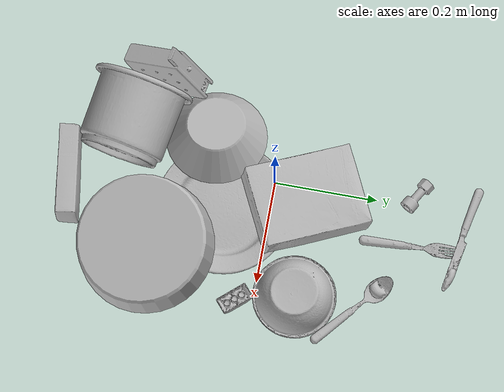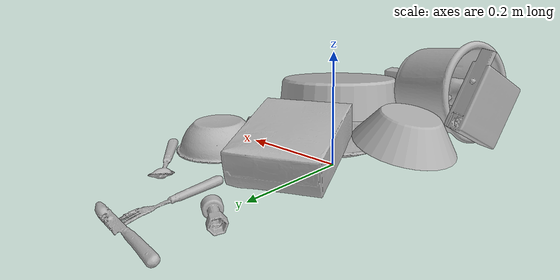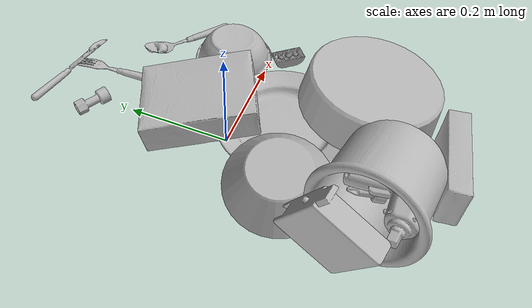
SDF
<sdf version="1.4">
  <world name="default">
    <light name="light1" type="point">
      <pose>0 0 1 0 0 0</pose>
      <diffuse>3 3 3 1</diffuse>
      <specular>3 3 3 1</specular>
    </light>
    <light name="light2" type="point">
      <pose>0 0.5 2 0 0 0</pose>
      <diffuse>1 1 1 1</diffuse>
      <specular>1 1 1 1</specular>
    </light>
    <light name="light3" type="point">
      <pose>0 0.5 2 0 0 0</pose>
      <diffuse>3 3 3 1</diffuse>
      <specular>3 3 3 1</specular>
    </light>
    <scene>
      <ambient>0.7 0.7 0.7</ambient>
    </scene>
    <model name="plate1">
      <link name="link_plate1">
        <collision name="default">
          <geometry>
            <mesh>
              <uri>model://plate/collision_meshes/collision.obj</uri>
              <scale>1.0 1.0 1.0</scale>
            </mesh>
          </geometry>
          <surface>
            <friction>
              <ode>
                <mu>0.5</mu>
                <mu2>0.5</mu2>
              </ode>
            </friction>
          <contact>
        <ode>
            <max_vel>0</max_vel>
            <min_depth>0.0001</min_depth>
            <kp>1e8</kp>
        </ode>
    </contact></surface>
        </collision>
        <visual name="default">
          <geometry>
            <mesh>
              <uri>model://plate/visual_meshes/visual.dae</uri>
              <scale>1.0 1.0 1.0</scale>
            </mesh>
          </geometry>
        </visual>
        <inertial>
          <mass>0.11001742631196976</mass>
          <pose>-0.0006044686888344586 0.000278257648460567 -0.0010561998933553696 0.00221878912528286 -0.0032254756485070152 0.4526088917028743</pose>
          <inertia>
            <ixx>0.00051466376</ixx>
            <iyy>0.0005097412</iyy>
            <izz>0.0010066056</izz>
            <ixy>0</ixy>
            <ixz>0</ixz>
            <iyz>0</iyz>
          </inertia>
        </inertial>
      </link>
      <pose>0.07121524214744568 -0.08745674788951874 0.013817273080348969 -0.00021842980571593821 0.0010865469952773123 1.6749048011204182</pose>
    </model>
    <model name="plate2">
      <link name="link_plate2">
        <collision name="default">
          <geometry>
            <mesh>
              <uri>model://pan_tefal/collision_meshes/collision.obj</uri>
              <scale>1.0 1.0 1.0</scale>
            </mesh>
          </geometry>
          <surface>
            <friction>
              <ode>
                <mu>0.5</mu>
                <mu2>0.5</mu2>
              </ode>
            </friction>
          <contact>
        <ode>
            <max_vel>0</max_vel>
            <min_depth>0.0001</min_depth>
            <kp>1e8</kp>
        </ode>
    </contact></surface>
        </collision>
        <visual name="default">
          <geometry>
            <mesh>
              <uri>model://pan_tefal/visual_meshes/visual.dae</uri>
              <scale>1.0 1.0 1.0</scale>
            </mesh>
          </geometry>
        </visual>
        <inertial>
          <mass>1.457576870918274</mass>
          <pose>-0.00018002426077146083 3.279360316810198e-05 -0.008514936082065105 0.0008190306735146073 -0.00033013365411173643 -0.33185917339097665</pose>
          <inertia>
            <ixx>0.010061583</ixx>
            <iyy>0.01012645</iyy>
            <izz>0.01852144</izz>
            <ixy>0</ixy>
            <ixz>0</ixz>
            <iyz>0</iyz>
          </inertia>
        </inertial>
      </link>
      <pose>0.17130538821220398 -0.22368374466896057 0.054193466901779175 -3.068832464181605 -0.10223558018317998 1.6497710891648543</pose>
    </model>
    <model name="bowl1">
      <link name="link_bowl1">
        <collision name="default">
          <geometry>
            <mesh>
              <uri>model://bowl_a/collision_meshes/collision.obj</uri>
              <scale>1.0 1.0 1.0</scale>
            </mesh>
          </geometry>
          <surface>
            <friction>
              <ode>
                <mu>0.5</mu>
                <mu2>0.5</mu2>
              </ode>
            </friction>
          <contact>
        <ode>
            <max_vel>0</max_vel>
            <min_depth>0.0001</min_depth>
            <kp>1e8</kp>
        </ode>
    </contact></surface>
        </collision>
        <visual name="default">
          <geometry>
            <mesh>
              <uri>model://bowl_a/visual_meshes/visual.dae</uri>
              <scale>1.0 1.0 1.0</scale>
            </mesh>
          </geometry>
        </visual>
        <inertial>
          <mass>0.29746556282043457</mass>
          <pose>0.0002786756958812475 4.7311452362919226e-05 -0.0013765294570475817 -0.0009805438325310402 -0.001093816410149737 -0.19123071729823712</pose>
          <inertia>
            <ixx>0.0008468981</ixx>
            <iyy>0.00085209764</iyy>
            <izz>0.0015062407</izz>
            <ixy>0</ixy>
            <ixz>0</ixz>
            <iyz>0</iyz>
          </inertia>
        </inertial>
      </link>
      <pose>-0.0697745531797409 -0.1265534609556198 0.04829755797982216 3.001853094088784 0.13304832583945947 2.5700976251004044</pose>
    </model>
    <model name="bowl2">
      <link name="link_bowl2">
        <collision name="default">
          <geometry>
            <mesh>
              <uri>model://bowl/collision_meshes/collision.obj</uri>
              <scale>1.0 1.0 1.0</scale>
            </mesh>
          </geometry>
          <surface>
            <friction>
              <ode>
                <mu>0.5</mu>
                <mu2>0.5</mu2>
              </ode>
            </friction>
          <contact>
        <ode>
            <max_vel>0</max_vel>
            <min_depth>0.0001</min_depth>
            <kp>1e8</kp>
        </ode>
    </contact></surface>
        </collision>
        <visual name="default">
          <geometry>
            <mesh>
              <uri>model://bowl/visual_meshes/visual.dae</uri>
              <scale>1.0 1.0 1.0</scale>
            </mesh>
          </geometry>
        </visual>
        <inertial>
          <mass>0.12348172068595886</mass>
          <pose>0.0002044529828708619 -0.0010302055161446333 -0.0008042656118050218 -0.01576411854188812 0.014546757923928972 0.7140383762832406</pose>
          <inertia>
            <ixx>0.0002836472</ixx>
            <iyy>0.00027730947</iyy>
            <izz>0.00047719217</izz>
            <ixy>0</ixy>
            <ixz>0</ixz>
            <iyz>0</iyz>
          </inertia>
        </inertial>
      </link>
      <pose>0.21520869433879852 0.07631785422563553 0.027247346937656403 -3.132723909685784 0.0006756169185562695 1.2417886212231937</pose>
    </model>
    <model name="silverware1">
      <link name="link_silverware1">
        <collision name="default">
          <geometry>
            <mesh>
              <uri>model://spoon/collision_meshes/collision.obj</uri>
              <scale>1.0 1.0 1.0</scale>
            </mesh>
          </geometry>
          <surface>
            <friction>
              <ode>
                <mu>0.5</mu>
                <mu2>0.5</mu2>
              </ode>
            </friction>
          <contact>
        <ode>
            <max_vel>0</max_vel>
            <min_depth>0.0001</min_depth>
            <kp>1e8</kp>
        </ode>
    </contact></surface>
        </collision>
        <visual name="default">
          <geometry>
            <mesh>
              <uri>model://spoon/visual_meshes/visual.dae</uri>
              <scale>1.0 1.0 1.0</scale>
            </mesh>
          </geometry>
        </visual>
        <inertial>
          <mass>0.03284037858247757</mass>
          <pose>-0.005526319611817598 -0.001603417214937508 -0.000727165665011853 0.03521671059584429 -0.039065856285187314 0.0061506144474233635</pose>
          <inertia>
            <ixx>1.8266356e-06</ixx>
            <iyy>0.00012495652</iyy>
            <izz>0.00012585736</izz>
            <ixy>0</ixy>
            <ixz>0</ixz>
            <iyz>0</iyz>
          </inertia>
        </inertial>
      </link>
      <pose>0.22189992666244507 0.18765421211719513 0.008385262452065945 0.006729847427297724 0.02689298849879196 2.412304553264664</pose>
    </model>
    <model name="box1">
      <link name="link_box1">
        <collision name="default">
          <geometry>
            <mesh>
              <uri>model://cracker_box/collision_meshes/collision.obj</uri>
              <scale>1.0 1.0 1.0</scale>
            </mesh>
          </geometry>
          <surface>
            <friction>
              <ode>
                <mu>0.5</mu>
                <mu2>0.5</mu2>
              </ode>
            </friction>
          <contact>
        <ode>
            <max_vel>0</max_vel>
            <min_depth>0.0001</min_depth>
            <kp>1e8</kp>
        </ode>
    </contact></surface>
        </collision>
        <visual name="default">
          <geometry>
            <mesh>
              <uri>model://cracker_box/visual_meshes/visual.dae</uri>
              <scale>1.0 1.0 1.0</scale>
            </mesh>
          </geometry>
        </visual>
        <inertial>
          <mass>2.434305191040039</mass>
          <pose>0.0009464126778766513 0.0002543424488976598 -0.0017029534792527556 -0.0003162073658586955 -0.011106488669321329 0.0025467952332158075</pose>
          <inertia>
            <ixx>0.0061917845</ixx>
            <iyy>0.010223853</iyy>
            <izz>0.014590379</izz>
            <ixy>0</ixy>
            <ixz>0</ixz>
            <iyz>0</iyz>
          </inertia>
        </inertial>
      </link>
      <pose>0.03279644250869751 0.0671384185552597 0.0505341999232769 3.133537054804519 0.1532230235851564 2.024572247600637</pose>
    </model>
    <model name="box2">
      <link name="link_box2">
        <collision name="default">
          <geometry>
            <mesh>
              <uri>model://sugar_box/collision_meshes/collision.obj</uri>
              <scale>1.0 1.0 1.0</scale>
            </mesh>
          </geometry>
          <surface>
            <friction>
              <ode>
                <mu>0.5</mu>
                <mu2>0.5</mu2>
              </ode>
            </friction>
          <contact>
        <ode>
            <max_vel>0</max_vel>
            <min_depth>0.0001</min_depth>
            <kp>1e8</kp>
        </ode>
    </contact></surface>
        </collision>
        <visual name="default">
          <geometry>
            <mesh>
              <uri>model://sugar_box/visual_meshes/visual.dae</uri>
              <scale>1.0 1.0 1.0</scale>
            </mesh>
          </geometry>
        </visual>
        <inertial>
          <mass>0.5700510144233704</mass>
          <pose>0.0010343727190047503 3.849109634757042e-05 -0.00036364805418998003 -0.00040462615490547663 0.0010506634056045778 0.0026153790218534064</pose>
          <inertia>
            <ixx>0.00047496508</ixx>
            <iyy>0.0015351841</iyy>
            <izz>0.0018377992</izz>
            <ixy>0</ixy>
            <ixz>0</ixz>
            <iyz>0</iyz>
          </inertia>
        </inertial>
      </link>
      <pose>0.06266934424638748 -0.38975971937179565 0.04647918418049812 -1.5699501229553428 -0.005755557143742643 0.1449174067330872</pose>
    </model>
    <model name="cup1">
      <link name="link_cup1">
        <collision name="default">
          <geometry>
            <mesh>
              <uri>model://i_cups/collision_meshes/collision.obj</uri>
              <scale>2.0 2.0 2.0</scale>
            </mesh>
          </geometry>
          <surface>
            <friction>
              <ode>
                <mu>0.5</mu>
                <mu2>0.5</mu2>
              </ode>
            </friction>
          <contact>
        <ode>
            <max_vel>0</max_vel>
            <min_depth>0.0001</min_depth>
            <kp>1e8</kp>
        </ode>
    </contact></surface>
        </collision>
        <visual name="default">
          <geometry>
            <mesh>
              <uri>model://i_cups/visual_meshes/visual.dae</uri>
              <scale>2.0 2.0 2.0</scale>
            </mesh>
          </geometry>
        </visual>
        <inertial>
          <mass>0.8749163746833801</mass>
          <pose>0.0002248019736725837 0.0003359491820447147 -0.0017158064292743802 -0.028982988446176382 -0.03987323668700188 -0.3459135059395342</pose>
          <inertia>
            <ixx>0.0048453393</ixx>
            <iyy>0.0048880302</iyy>
            <izz>0.0054154512</izz>
            <ixy>0</ixy>
            <ixz>0</ixz>
            <iyz>0</iyz>
          </inertia>
        </inertial>
      </link>
      <pose>-0.05596550181508064 -0.28830060362815857 0.08982506394386292 1.2133119387821023 1.2105360389165676 -2.0853277692779795</pose>
    </model>
    <model name="silverware2">
      <link name="link_silverware2">
        <collision name="default">
          <geometry>
            <mesh>
              <uri>model://fork/collision_meshes/collision.obj</uri>
              <scale>1.0 1.0 1.0</scale>
            </mesh>
          </geometry>
          <surface>
            <friction>
              <ode>
                <mu>0.5</mu>
                <mu2>0.5</mu2>
              </ode>
            </friction>
          <contact>
        <ode>
            <max_vel>0</max_vel>
            <min_depth>0.0001</min_depth>
            <kp>1e8</kp>
        </ode>
    </contact></surface>
        </collision>
        <visual name="default">
          <geometry>
            <mesh>
              <uri>model://fork/visual_meshes/visual.dae</uri>
              <scale>1.0 1.0 1.0</scale>
            </mesh>
          </geometry>
        </visual>
        <inertial>
          <mass>0.021080315113067627</mass>
          <pose>-0.02957003377377987 0.00046588227269239724 0.0003218860656488687 -0.013550583544297463 -0.010977830979267335 0.014453899239778455</pose>
          <inertia>
            <ixx>7.3898417e-07</ixx>
            <iyy>5.503463e-05</iyy>
            <izz>5.5365177e-05</izz>
            <ixy>0</ixy>
            <ixz>0</ixz>
            <iyz>0</iyz>
          </inertia>
        </inertial>
      </link>
      <pose>0.07927599549293518 0.27756160497665405 0.007444927003234625 -3.063480746839392 0.0028203898633148354 1.6136109309269133</pose>
    </model>
    <model name="silverware3">
      <link name="link_silverware3">
        <collision name="default">
          <geometry>
            <mesh>
              <uri>model://knife/collision_meshes/collision.obj</uri>
              <scale>1.0 1.0 1.0</scale>
            </mesh>
          </geometry>
          <surface>
            <friction>
              <ode>
                <mu>0.5</mu>
                <mu2>0.5</mu2>
              </ode>
            </friction>
          <contact>
        <ode>
            <max_vel>0</max_vel>
            <min_depth>0.0001</min_depth>
            <kp>1e8</kp>
        </ode>
    </contact></surface>
        </collision>
        <visual name="default">
          <geometry>
            <mesh>
              <uri>model://knife/visual_meshes/visual.dae</uri>
              <scale>1.0 1.0 1.0</scale>
            </mesh>
          </geometry>
        </visual>
        <inertial>
          <mass>0.03557601198554039</mass>
          <pose>-0.023785259574651718 0.0015275123296305537 5.062016498413868e-05 0.07305791577183936 0.01724842049726123 -0.007409813921982597</pose>
          <inertia>
            <ixx>1.0097915e-06</ixx>
            <iyy>0.00013667726</iyy>
            <izz>0.00013700248</izz>
            <ixy>0</ixy>
            <ixz>0</ixz>
            <iyz>0</iyz>
          </inertia>
        </inertial>
      </link>
      <pose>0.04903857037425041 0.37542715668678284 0.006460187025368214 2.6973649522438454 0.012729169157415522 -0.1716835724588616</pose>
    </model>
    <model name="toy1">
      <link name="link_toy1">
        <collision name="default">
          <geometry>
            <mesh>
              <uri>model://b_toy_airplane/collision_meshes/collision.obj</uri>
              <scale>1.0 1.0 1.0</scale>
            </mesh>
          </geometry>
          <surface>
            <friction>
              <ode>
                <mu>0.5</mu>
                <mu2>0.5</mu2>
              </ode>
            </friction>
          <contact>
        <ode>
            <max_vel>0</max_vel>
            <min_depth>0.0001</min_depth>
            <kp>1e8</kp>
        </ode>
    </contact></surface>
        </collision>
        <visual name="default">
          <geometry>
            <mesh>
              <uri>model://b_toy_airplane/visual_meshes/visual.dae</uri>
              <scale>1.0 1.0 1.0</scale>
            </mesh>
          </geometry>
        </visual>
        <inertial>
          <mass>0.2131570726633072</mass>
          <pose>0.005081363953649998 0.00401558680459857 0.00954306498169899 -0.040018114912876775 -0.04022188568687408 -0.5601502887595425</pose>
          <inertia>
            <ixx>0.00039573</ixx>
            <iyy>0.00015817716</iyy>
            <izz>0.00049232744</izz>
            <ixy>0</ixy>
            <ixz>0</ixz>
            <iyz>0</iyz>
          </inertia>
        </inertial>
      </link>
      <pose>-0.048958662897348404 -0.31419050693511963 0.06213352084159851 0.2755658028036891 -0.07642843024735395 2.9874201081370964</pose>
    </model>
    <model name="toy2">
      <link name="link_toy2">
        <collision name="default">
          <geometry>
            <mesh>
              <uri>model://nine_hole_peg_test/collision_meshes/collision.obj</uri>
              <scale>1.0 1.0 1.0</scale>
            </mesh>
          </geometry>
          <surface>
            <friction>
              <ode>
                <mu>0.5</mu>
                <mu2>0.5</mu2>
              </ode>
            </friction>
          <contact>
        <ode>
            <max_vel>0</max_vel>
            <min_depth>0.0001</min_depth>
            <kp>1e8</kp>
        </ode>
    </contact></surface>
        </collision>
        <visual name="default">
          <geometry>
            <mesh>
              <uri>model://nine_hole_peg_test/visual_meshes/visual.dae</uri>
              <scale>1.0 1.0 1.0</scale>
            </mesh>
          </geometry>
        </visual>
        <inertial>
          <mass>0.9403080940246582</mass>
          <pose>-0.004617387894541025 -0.009647617116570473 2.646069333422929e-05 -0.0014666798116952742 0.0007194174694617774 -0.6342424398534297</pose>
          <inertia>
            <ixx>0.0014703267</ixx>
            <iyy>0.0013728285</iyy>
            <izz>0.0025764457</izz>
            <ixy>0</ixy>
            <ixz>0</ixz>
            <iyz>0</iyz>
          </inertia>
        </inertial>
      </link>
      <pose>-0.16122449934482574 -0.23640717566013336 0.09773321449756622 1.5038143970023181 -0.5141728036107331 1.4191260103247565</pose>
    </model>
    <model name="toy3">
      <link name="link_toy3">
        <collision name="default">
          <geometry>
            <mesh>
              <uri>model://a_lego_duplo/collision_meshes/collision.obj</uri>
              <scale>1.0 1.0 1.0</scale>
            </mesh>
          </geometry>
          <surface>
            <friction>
              <ode>
                <mu>0.5</mu>
                <mu2>0.5</mu2>
              </ode>
            </friction>
          <contact>
        <ode>
            <max_vel>0</max_vel>
            <min_depth>0.0001</min_depth>
            <kp>1e8</kp>
        </ode>
    </contact></surface>
        </collision>
        <visual name="default">
          <geometry>
            <mesh>
              <uri>model://a_lego_duplo/visual_meshes/visual.dae</uri>
              <scale>1.0 1.0 1.0</scale>
            </mesh>
          </geometry>
        </visual>
        <inertial>
          <mass>0.023130550980567932</mass>
          <pose>-0.00011337705655023456 0.00018517566786613315 0.00036926098982803524 -0.014116995996849858 -0.00012565876120078728 6.143831699070756e-05</pose>
          <inertia>
            <ixx>2.9655212e-06</ixx>
            <iyy>6.643419e-06</iyy>
            <izz>8.229349e-06</izz>
            <ixy>0</ixy>
            <ixz>0</ixz>
            <iyz>0</iyz>
          </inertia>
        </inertial>
      </link>
      <pose>0.24208936095237732 -0.03489074856042862 0.012124723754823208 -3.1413018203122793 -0.01558317487482276 2.271713350372935</pose>
    </model>
    <model name="toy4">
      <link name="link_toy4">
        <collision name="default">
          <geometry>
            <mesh>
              <uri>model://c_toy_airplane/collision_meshes/collision.obj</uri>
              <scale>1.0 1.0 1.0</scale>
            </mesh>
          </geometry>
          <surface>
            <friction>
              <ode>
                <mu>0.5</mu>
                <mu2>0.5</mu2>
              </ode>
            </friction>
          <contact>
        <ode>
            <max_vel>0</max_vel>
            <min_depth>0.0001</min_depth>
            <kp>1e8</kp>
        </ode>
    </contact></surface>
        </collision>
        <visual name="default">
          <geometry>
            <mesh>
              <uri>model://c_toy_airplane/visual_meshes/visual.dae</uri>
              <scale>1.0 1.0 1.0</scale>
            </mesh>
          </geometry>
        </visual>
        <inertial>
          <mass>0.016945533454418182</mass>
          <pose>-0.00023024251277092844 -4.426267139479023e-07 -0.006080526392906904 -0.00619248279943298 -0.01679780513617648 0.7654772671109313</pose>
          <inertia>
            <ixx>7.781044e-06</ixx>
            <iyy>7.759084e-06</iyy>
            <izz>1.826835e-06</izz>
            <ixy>0</ixy>
            <ixz>0</ixz>
            <iyz>0</iyz>
          </inertia>
        </inertial>
      </link>
      <pose>-0.019998565316200256 0.27583491802215576 0.014399772509932518 -1.615639713472309 0.4268329816411804 1.0069411867342575</pose>
    </model>
    <model name="toy5">
      <link name="link_toy5">
        <collision name="default">
          <geometry>
            <mesh>
              <uri>model://d_toy_airplane/collision_meshes/collision.obj</uri>
              <scale>1.0 1.0 1.0</scale>
            </mesh>
          </geometry>
          <surface>
            <friction>
              <ode>
                <mu>0.5</mu>
                <mu2>0.5</mu2>
              </ode>
            </friction>
          <contact>
        <ode>
            <max_vel>0</max_vel>
            <min_depth>0.0001</min_depth>
            <kp>1e8</kp>
        </ode>
    </contact></surface>
        </collision>
        <visual name="default">
          <geometry>
            <mesh>
              <uri>model://d_toy_airplane/visual_meshes/visual.dae</uri>
              <scale>1.0 1.0 1.0</scale>
            </mesh>
          </geometry>
        </visual>
        <inertial>
          <mass>0.01782749593257904</mass>
          <pose>9.410309576196596e-05 -5.809334834339097e-05 -0.011728094890713692 0.00026697885790152897 0.00467897817044427 0.5194648744438854</pose>
          <inertia>
            <ixx>5.3443378e-06</ixx>
            <iyy>5.3483677e-06</iyy>
            <izz>1.6134899e-06</izz>
            <ixy>0</ixy>
            <ixz>0</ixz>
            <iyz>0</iyz>
          </inertia>
        </inertial>
      </link>
      <pose>-0.031470395624637604 -0.2677869498729706 0.029372476041316986 -1.1823332798115138 -0.966838098968383 0.04238511179640304</pose>
    </model>
  <physics type="ode">
      <max_contacts>50</max_contacts>
      <ode>
        <solver>
          <type>quick</type>
          <iters>75</iters>
        </solver>
        <constraints>
          <contact_max_correcting_vel>0</contact_max_correcting_vel>
          <contact_surface_layer>0</contact_surface_layer>
        </constraints>
      </ode>
    </physics></world>
</sdf>
